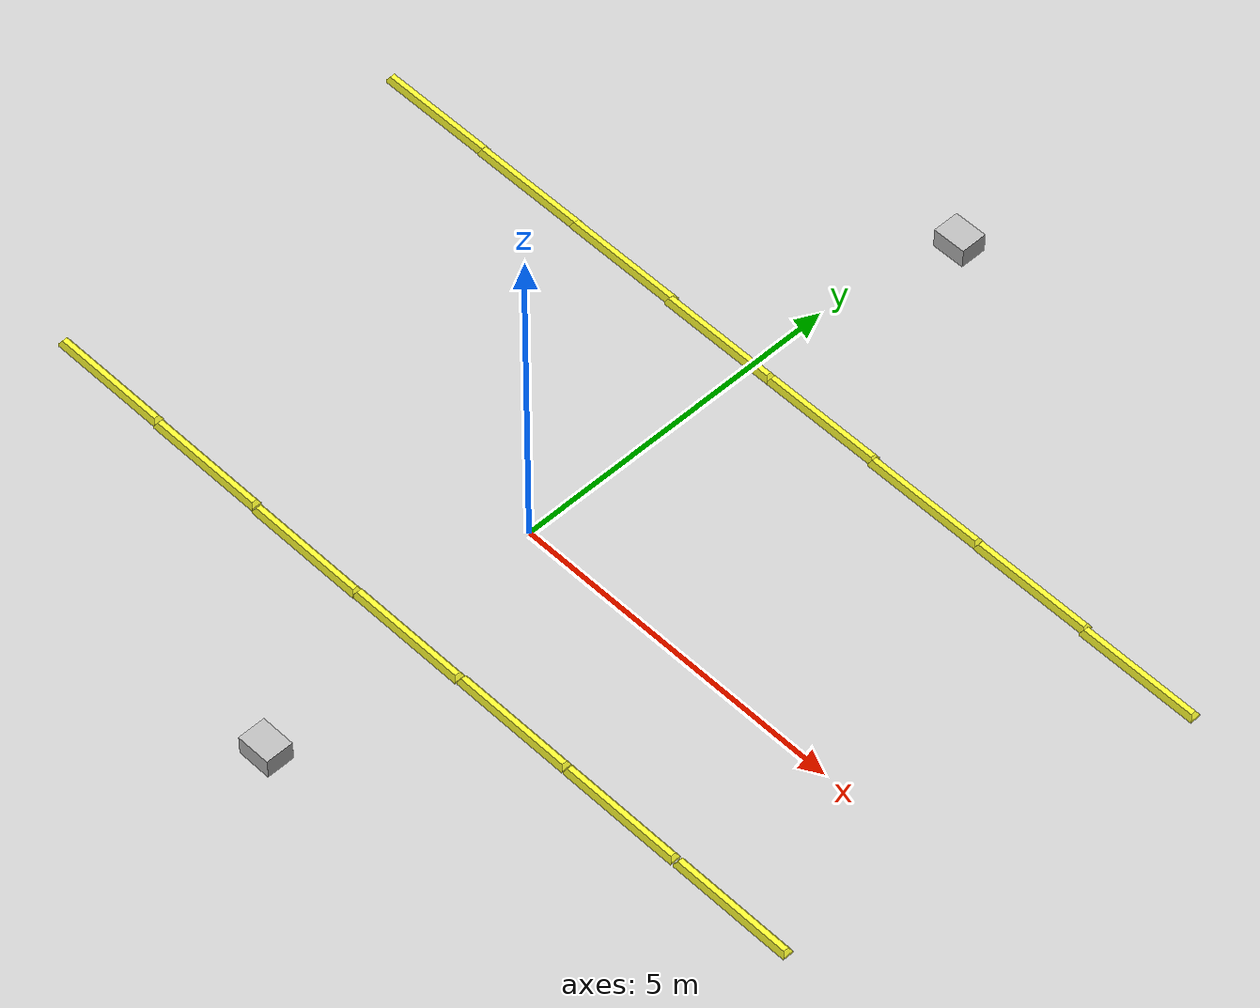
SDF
<sdf version="1.7">
 <world name="default">
  <light name="sun" type="directional">
   <pose>0 0 10 0 -0 0</pose>
   <diffuse>0.8 0.8 0.8 1</diffuse>
   <specular>0.2 0.2 0.2 1</specular>
   <attenuation>
    <range>1000</range>
    <constant>0.9</constant>
    <linear>0.01</linear>
    <quadratic>0.001</quadratic>
   </attenuation>
   <direction>-0.5 0.1 -0.9</direction>
   <spot><inner_angle>0</inner_angle><outer_angle>0</outer_angle><falloff>0</falloff></spot>
  </light>
  <model name="ground_plane">
   <static>1</static>
   <link name="link">
    <collision name="collision">
     <geometry><plane><normal>0 0 1</normal><size>100 100</size></plane></geometry>
     <surface>
      <contact><collide_bitmask>65535</collide_bitmask></contact>
      <friction><ode><mu>100</mu><mu2>50</mu2></ode></friction>
     </surface>
    </collision>
    <visual name="visual">
     <cast_shadows>0</cast_shadows>
     <geometry><plane><normal>0 0 1</normal><size>100 100</size></plane></geometry>
     <material>
      <script><uri>file://media/materials/scripts/gazebo.material</uri><name>Gazebo/Grey</name></script>
     </material>
    </visual>
   </link>
  </model>
  <gravity>0 0 -9.8</gravity>
  <magnetic_field>6e-06 2.3e-05 -4.2e-05</magnetic_field>
  <atmosphere type="adiabatic"/>
  <physics type="ode">
   <max_step_size>0.001</max_step_size>
   <real_time_factor>1</real_time_factor>
   <real_time_update_rate>1000</real_time_update_rate>
  </physics>
  <scene><ambient>0.4 0.4 0.4 1</ambient><background>0.7 0.7 0.7 1</background><shadows>1</shadows></scene>
  <spherical_coordinates>
   <surface_model>EARTH_WGS84</surface_model>
   <latitude_deg>0</latitude_deg>
   <longitude_deg>0</longitude_deg>
   <elevation>0</elevation>
   <heading_deg>0</heading_deg>
  </spherical_coordinates>
  <model name="drc_practice_yellow_parking_block">
   <static>1</static>
   <link name="link">
    <visual name="visual">
     <geometry><mesh><uri>model://drc_practice_yellow_parking_block/meshes/block.dae</uri></mesh></geometry>
    </visual>
    <collision name="collision">
     <geometry><mesh><uri>model://drc_practice_yellow_parking_block/meshes/block.dae</uri></mesh></geometry>
    </collision>
   </link>
   <pose>-1.6369 -2.14899 0.048836 0 0 -1.5687</pose>
  </model>
  <model name="cardboard_box">
   <pose>0.238111 -4.49489 0.149 0 -0 0</pose>
   <link name="link">
    <inertial>
     <mass>2</mass>
     <inertia>
      <ixx>0.0416667</ixx>
      <ixy>0</ixy>
      <ixz>0</ixz>
      <iyy>0.0566667</iyy>
      <iyz>0</iyz>
      <izz>0.0683333</izz>
     </inertia>
    </inertial>
    <collision name="collision">
     <geometry><box><size>0.5 0.4 0.3</size></box></geometry>
     <surface>
      <friction><ode><mu>1</mu><mu2>1</mu2></ode></friction>
      <contact><ode><kp>1e+07</kp><kd>1</kd><min_depth>0.001</min_depth><max_vel>0.1</max_vel></ode></contact>
     </surface>
    </collision>
    <visual name="visual">
     <pose>0 0 -0.15 0 -0 0</pose>
     <geometry>
      <mesh><uri>model://cardboard_box/meshes/cardboard_box.dae</uri><scale>1.25932 1.00745 0.755591</scale></mesh>
     </geometry>
    </visual>
   </link>
  </model>
  <model name="drc_practice_yellow_parking_block_clone">
   <static>1</static>
   <link name="link">
    <visual name="visual">
     <geometry><mesh><uri>model://drc_practice_yellow_parking_block/meshes/block.dae</uri></mesh></geometry>
    </visual>
    <collision name="collision">
     <geometry><mesh><uri>model://drc_practice_yellow_parking_block/meshes/block.dae</uri></mesh></geometry>
    </collision>
   </link>
   <pose>0.150146 -2.14442 0.048836 0 0 -1.5687</pose>
  </model>
  <model name="drc_practice_yellow_parking_block_clone_0">
   <static>1</static>
   <link name="link">
    <visual name="visual">
     <geometry><mesh><uri>model://drc_practice_yellow_parking_block/meshes/block.dae</uri></mesh></geometry>
    </visual>
    <collision name="collision">
     <geometry><mesh><uri>model://drc_practice_yellow_parking_block/meshes/block.dae</uri></mesh></geometry>
    </collision>
   </link>
   <pose>1.96414 -2.13404 0.048836 0 0 -1.5687</pose>
  </model>
  <model name="drc_practice_yellow_parking_block_clone_1">
   <static>1</static>
   <link name="link">
    <visual name="visual">
     <geometry><mesh><uri>model://drc_practice_yellow_parking_block/meshes/block.dae</uri></mesh></geometry>
    </visual>
    <collision name="collision">
     <geometry><mesh><uri>model://drc_practice_yellow_parking_block/meshes/block.dae</uri></mesh></geometry>
    </collision>
   </link>
   <pose>3.78218 -2.13851 0.048836 0 0 -1.5687</pose>
  </model>
  <model name="drc_practice_yellow_parking_block_clone_2">
   <static>1</static>
   <link name="link">
    <visual name="visual">
     <geometry><mesh><uri>model://drc_practice_yellow_parking_block/meshes/block.dae</uri></mesh></geometry>
    </visual>
    <collision name="collision">
     <geometry><mesh><uri>model://drc_practice_yellow_parking_block/meshes/block.dae</uri></mesh></geometry>
    </collision>
   </link>
   <pose>5.61878 -2.1372 0.048836 0 0 -1.5687</pose>
  </model>
  <model name="drc_practice_yellow_parking_block_clone_3">
   <static>1</static>
   <link name="link">
    <visual name="visual">
     <geometry><mesh><uri>model://drc_practice_yellow_parking_block/meshes/block.dae</uri></mesh></geometry>
    </visual>
    <collision name="collision">
     <geometry><mesh><uri>model://drc_practice_yellow_parking_block/meshes/block.dae</uri></mesh></geometry>
    </collision>
   </link>
   <pose>-3.46832 -2.1263 0.048836 0 0 -1.5687</pose>
  </model>
  <model name="drc_practice_yellow_parking_block_clone_4">
   <static>1</static>
   <link name="link">
    <visual name="visual">
     <geometry><mesh><uri>model://drc_practice_yellow_parking_block/meshes/block.dae</uri></mesh></geometry>
    </visual>
    <collision name="collision">
     <geometry><mesh><uri>model://drc_practice_yellow_parking_block/meshes/block.dae</uri></mesh></geometry>
    </collision>
   </link>
   <pose>-5.27867 -2.1065 0.048836 0 0 -1.5687</pose>
  </model>
  <model name="drc_practice_yellow_parking_block_clone_2_clone">
   <static>1</static>
   <link name="link">
    <visual name="visual">
     <geometry><mesh><uri>model://drc_practice_yellow_parking_block/meshes/block.dae</uri></mesh></geometry>
    </visual>
    <collision name="collision">
     <geometry><mesh><uri>model://drc_practice_yellow_parking_block/meshes/block.dae</uri></mesh></geometry>
    </collision>
   </link>
   <pose>-0.5384 3.7597 0.048836 0 0 -1.5687</pose>
  </model>
  <model name="drc_practice_yellow_parking_block_clone_2_clone_clone">
   <static>1</static>
   <link name="link">
    <visual name="visual">
     <geometry><mesh><uri>model://drc_practice_yellow_parking_block/meshes/block.dae</uri></mesh></geometry>
    </visual>
    <collision name="collision">
     <geometry><mesh><uri>model://drc_practice_yellow_parking_block/meshes/block.dae</uri></mesh></geometry>
    </collision>
   </link>
   <pose>1.26054 3.75604 0.048836 0 0 -1.5687</pose>
  </model>
  <model name="drc_practice_yellow_parking_block_clone_2_clone_clone_0">
   <static>1</static>
   <link name="link">
    <visual name="visual">
     <geometry><mesh><uri>model://drc_practice_yellow_parking_block/meshes/block.dae</uri></mesh></geometry>
    </visual>
    <collision name="collision">
     <geometry><mesh><uri>model://drc_practice_yellow_parking_block/meshes/block.dae</uri></mesh></geometry>
    </collision>
   </link>
   <pose>3.03288 3.72653 0.048836 0 0 -1.5687</pose>
  </model>
  <model name="drc_practice_yellow_parking_block_clone_2_clone_clone_1">
   <static>1</static>
   <link name="link">
    <visual name="visual">
     <geometry><mesh><uri>model://drc_practice_yellow_parking_block/meshes/block.dae</uri></mesh></geometry>
    </visual>
    <collision name="collision">
     <geometry><mesh><uri>model://drc_practice_yellow_parking_block/meshes/block.dae</uri></mesh></geometry>
    </collision>
   </link>
   <pose>4.8314 3.71465 0.048836 0 0 -1.5687</pose>
  </model>
  <model name="drc_practice_yellow_parking_block_clone_2_clone_clone_2">
   <static>1</static>
   <link name="link">
    <visual name="visual">
     <geometry><mesh><uri>model://drc_practice_yellow_parking_block/meshes/block.dae</uri></mesh></geometry>
    </visual>
    <collision name="collision">
     <geometry><mesh><uri>model://drc_practice_yellow_parking_block/meshes/block.dae</uri></mesh></geometry>
    </collision>
   </link>
   <pose>6.59847 3.67799 0.048836 0 0 -1.5687</pose>
  </model>
  <model name="drc_practice_yellow_parking_block_clone_2_clone_clone_3">
   <static>1</static>
   <link name="link">
    <visual name="visual">
     <geometry><mesh><uri>model://drc_practice_yellow_parking_block/meshes/block.dae</uri></mesh></geometry>
    </visual>
    <collision name="collision">
     <geometry><mesh><uri>model://drc_practice_yellow_parking_block/meshes/block.dae</uri></mesh></geometry>
    </collision>
   </link>
   <pose>-2.26807 3.78814 0.048836 0 0 -1.5687</pose>
  </model>
  <model name="drc_practice_yellow_parking_block_clone_2_clone_clone_4">
   <static>1</static>
   <link name="link">
    <visual name="visual">
     <geometry><mesh><uri>model://drc_practice_yellow_parking_block/meshes/block.dae</uri></mesh></geometry>
    </visual>
    <collision name="collision">
     <geometry><mesh><uri>model://drc_practice_yellow_parking_block/meshes/block.dae</uri></mesh></geometry>
    </collision>
   </link>
   <pose>-3.96882 3.79821 0.048836 0 0 -1.5687</pose>
  </model>
  <model name="drc_practice_yellow_parking_block_clone_2_clone_clone_5">
   <static>1</static>
   <link name="link">
    <visual name="visual">
     <geometry><mesh><uri>model://drc_practice_yellow_parking_block/meshes/block.dae</uri></mesh></geometry>
    </visual>
    <collision name="collision">
     <geometry><mesh><uri>model://drc_practice_yellow_parking_block/meshes/block.dae</uri></mesh></geometry>
    </collision>
   </link>
   <pose>-5.70421 3.81217 0.048836 0 0 -1.5687</pose>
  </model>
  <model name="cardboard_box_clone">
   <pose>0.447827 7.02168 0.149 0 -0 0</pose>
   <link name="link">
    <inertial>
     <mass>2</mass>
     <inertia>
      <ixx>0.0416667</ixx>
      <ixy>0</ixy>
      <ixz>0</ixz>
      <iyy>0.0566667</iyy>
      <iyz>0</iyz>
      <izz>0.0683333</izz>
     </inertia>
    </inertial>
    <collision name="collision">
     <geometry><box><size>0.5 0.4 0.3</size></box></geometry>
     <surface>
      <friction><ode><mu>1</mu><mu2>1</mu2></ode></friction>
      <contact><ode><kp>1e+07</kp><kd>1</kd><min_depth>0.001</min_depth><max_vel>0.1</max_vel></ode></contact>
     </surface>
    </collision>
    <visual name="visual">
     <pose>0 0 -0.15 0 -0 0</pose>
     <geometry>
      <mesh><uri>model://cardboard_box/meshes/cardboard_box.dae</uri><scale>1.25932 1.00745 0.755591</scale></mesh>
     </geometry>
    </visual>
   </link>
  </model>
 </world>
</sdf>
